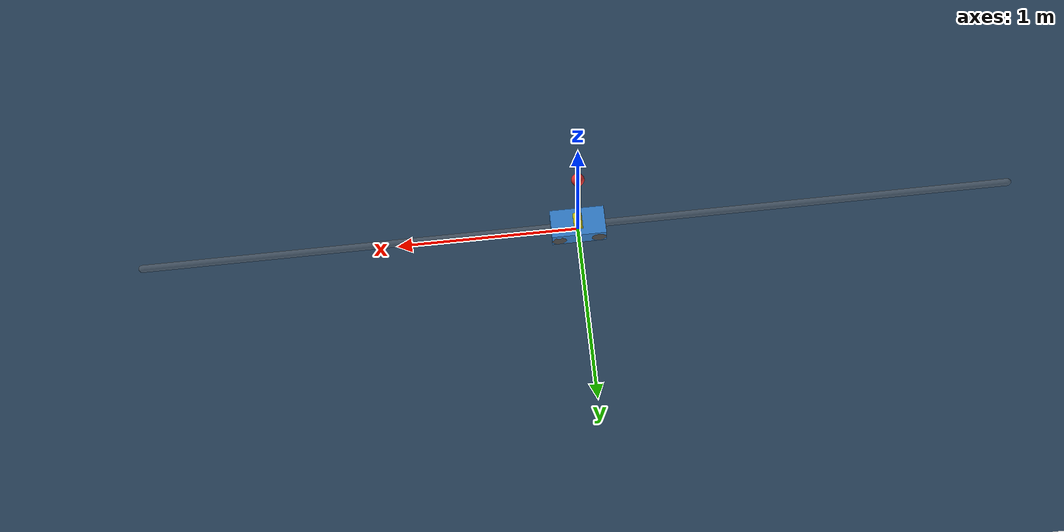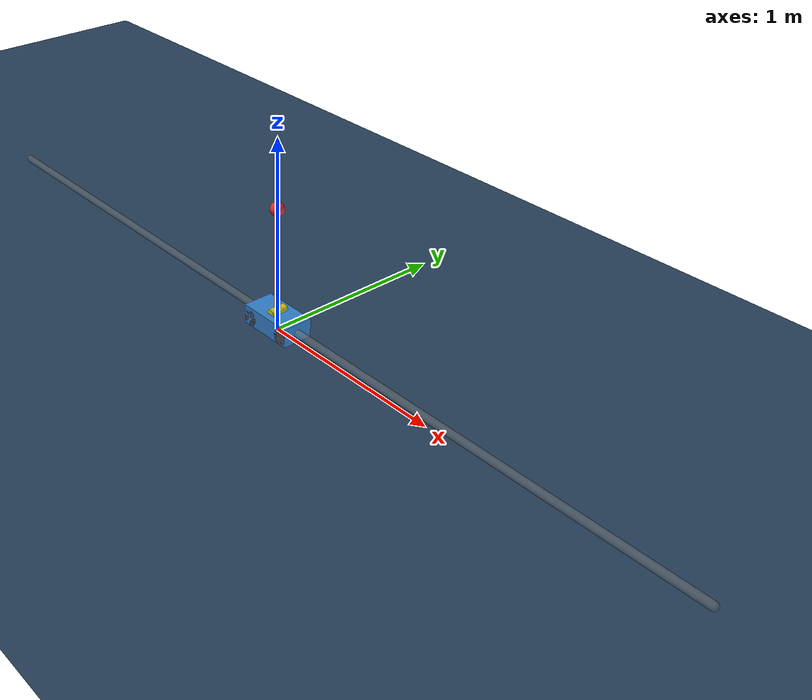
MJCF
<mujoco model="inverted_pendulum">
    <option timestep="0.002" integrator="RK4" gravity="0 0 -9.81" solver="Newton" iterations="50" tolerance="1e-10"/>
    <asset>
        <texture name="grid" type="2d" builtin="checker" width="512" height="512" rgb1=".1 .2 .3" rgb2=".2 .3 .4"/>
        <material name="grid" texture="grid" texrepeat="1 1" texuniform="true" reflectance=".2"/>
        <material name="cart_mat" rgba=".2 .5 .8 1"/>
        <material name="pole_mat" rgba=".9 .4 .1 1"/>
        <material name="hinge_mat" rgba=".8 .8 .1 1"/>
    </asset>
    <worldbody>
        <camera name="view_2d" pos="0 -3 0.5" euler="90 0 0"/>
        <!-- Light -->
        <light name="main_light" pos="0 0 4" dir="0 0 -1" diffuse=".8 .8 .8" specular=".3 .3 .3" castshadow="true"/>
        <!-- Floor -->
        <geom name="floor" type="plane" size="5 2 .05" material="grid" friction="0 0 0" condim="1"/>
        <!-- Rail -->
        <geom name="rail" type="capsule" size="0.02" fromto="-2.4 0 0.05 2.4 0 0.05" rgba=".5 .5 .5 .4" contype="0" conaffinity="0"/>

        <body name="cart" pos="0 0 0.05">
            <joint name="slider" type="slide" axis="1 0 0" range="-2.4 2.4" damping="0.5"/>
                <geom name="cart_geom" type="box" size="0.15 0.08 0.05" material="cart_mat" mass="0.5" friction="0 0 0"/>
            <!-- Wheels (visual only) -->
            <geom name="wheel_fl" type="cylinder" size="0.04 0.01" pos=".11 .07 -0.01" euler="90 0 0" rgba=".3 .3 .3 1" contype="0" conaffinity="0"/>
            <geom name="wheel_fr" type="cylinder" size="0.04 0.01" pos=".11 -.07 -0.01" euler="90 0 0" rgba=".3 .3 .3 1" contype="0" conaffinity="0"/>
            <geom name="wheel_bl" type="cylinder" size="0.04 0.01" pos="-.11 .07 -0.01" euler="90 0 0" rgba=".3 .3 .3 1" contype="0" conaffinity="0"/>
            <geom name="wheel_br" type="cylinder" size="0.04 0.01" pos="-.11 -.07 -0.01" euler="90 0 0" rgba=".3 .3 .3 1" contype="0" conaffinity="0"/>
            <!-- Hinge visual -->
            <geom name="hinge_vis" type="cylinder" size="0.025 0.045" pos="0 0 0.05" euler="90 0 0" material="hinge_mat" contype="0" conaffinity="0"/>
            <!-- Pole -->

            <body name="pole">
                <joint name="hinge" type="hinge" axis="0 1 0" range="-3.1416 3.1416" damping="0.1"/>
                <geom name="pole_geom" type="capsule" fromto="0 0 0 0 0 0.6" size=".015" material="pole_mat"/>
                    <geom name="ball_geom" type="sphere" size="0.035" pos="0 0 0.6" rgba=".9 .2 .2 1" mass="0.2"/>
            </body>
        </body>
    </worldbody>
</mujoco>
